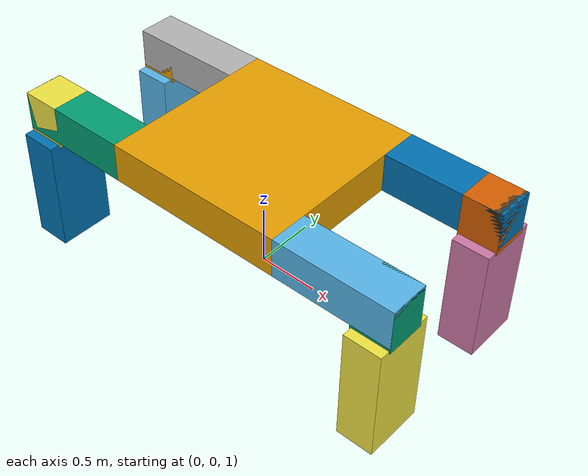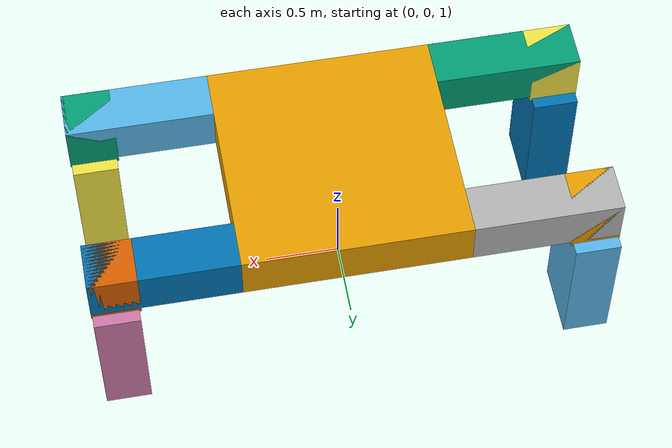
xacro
<?xml version="1.0" ?>
<robot name="robot" xmlns:xacro="http://www.ros.org/wiki/xacro">
    <xacro:include filename="$(find quadped1)/urdf/links_joints.xacro"/>
    <!--first leg -->
    <BOX name="base_link" origin_rpy="0 0 0" origin_xyz="0 0 2" size="1.49077 1.50805 0.32"/>
    <BOX name="link1" origin_rpy="0 0 0" origin_xyz="0.4855 0.16 0" size="0.971 0.32 0.32"/>
    <JOINT_REVOLUTE name="base_link__link1" parent="base_link" child="link1" origin_xyz="0.745385 -0.754025 2" origin_rpy="0 0 0" axis_xyz="0 1 0"/>
    <BOX name="dxel1" origin_rpy="0 0 0" origin_xyz="0.4855 0.16 -0.02" size="0.32 0.32 0.36"/>
    <JOINT_FIXED parent="link1" child="dxel1" axis_xyz="0 1 0" origin_xyz="0.3255 0 0" name="link1__dxel1" origin_rpy="0 0 0"/>
    <BOX name="link2" origin_rpy="0 0 0" origin_xyz="0 0 -0.475" size="0.3 0.48 0.95"/>
    <JOINT_REVOLUTE name="dxel1__link2" parent="dxel1" child="link2" origin_rpy="0 0 0" origin_xyz="0.48855 0.16 -0.18" axis_xyz="0 1 0"/>

   <!-- second leg -->
    <BOX name="link3" origin_rpy="0 0 0" origin_xyz="0.4855 0.16 0" size="0.971 0.32 0.32"/>
    <JOINT_REVOLUTE name="base_link__link3" parent="base_link" child="link3" origin_xyz="0.745385 0.434025 2" origin_rpy="0 0 0" axis_xyz="0 1 0"/>
    <BOX name="dxel2" origin_rpy="0 0 0" origin_xyz="0.4855 0.16 -0.02" size="0.32 0.32 0.36"/>
    <JOINT_FIXED parent="link3" child="dxel2" axis_xyz="0 1 0" origin_xyz="0.3255 0 0" name="link3__dxel2" origin_rpy="0 0 0"/>
    <BOX name="link4" origin_rpy="0 0 0" origin_xyz="0 0 -0.475" size="0.3 0.48 0.95"/>
    <JOINT_REVOLUTE name="dxel2__link4" parent="dxel2" child="link4" origin_rpy="0 0 0" origin_xyz="0.48855 0.16 -0.18" axis_xyz="0 1 0"/>

  <!-- third leg -->
    <BOX name="link5" origin_rpy="0 0 0" origin_xyz="-0.4855 0.16 0" size="0.971 0.32 0.32"/>
    <JOINT_REVOLUTE name="base_link__link5" parent="base_link" child="link5" origin_xyz="-0.745385 0.434025 2" origin_rpy="0 0 0" axis_xyz="0 1 0"/>
    <BOX name="dxel3" origin_rpy="0 0 0" origin_xyz="-0.4855 0.16 -0.02" size="0.32 0.32 0.36"/>
    <JOINT_FIXED parent="link5" child="dxel3" axis_xyz="0 1 0" origin_xyz="-0.3255 0 0" name="link5__dxel3" origin_rpy="0 0 0"/>
    <BOX name="link6" origin_rpy="0 0 0" origin_xyz="0 0 -0.475" size="0.3 0.48 0.95"/>
    <JOINT_REVOLUTE name="dxel3__link6" parent="dxel3" child="link6" origin_rpy="0 0 0" origin_xyz="-0.48855 0.16 -0.18" axis_xyz="0 1 0"/>

  <!-- fourth leg -->
    <BOX name="link7" origin_rpy="0 0 0" origin_xyz="-0.4855 0.16 0" size="0.971 0.32 0.32"/>
    <JOINT_REVOLUTE name="base_link__link7" parent="base_link" child="link7" origin_xyz="-0.745385 -0.754025 2" origin_rpy="0 0 0" axis_xyz="0 1 0"/>
    <BOX name="dxel4" origin_rpy="0 0 0" origin_xyz="-0.4855 0.16 -0.02" size="0.32 0.32 0.36"/>
    <JOINT_FIXED parent="link7" child="dxel4" axis_xyz="0 1 0" origin_xyz="-0.3255 0 0" name="link7__dxel4" origin_rpy="0 0 0"/>
    <BOX name="link8" origin_rpy="0 0 0" origin_xyz="0 0 -0.475" size="0.3 0.48 0.95"/>
    <JOINT_REVOLUTE name="dxel4__link8" parent="dxel4" child="link8" origin_rpy="0 0 0" origin_xyz="-0.48855 0.16 -0.18" axis_xyz="0 1 0"/>

    <gazebo>
    <plugin name="gazebo_ros_control" filename="libgazebo_ros_control.so">
    </plugin>
  </gazebo>

</robot>

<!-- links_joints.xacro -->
<robot xmlns:xacro="http://www.ros.org/wiki/xacro">

  <xacro:macro name="JOINT_REVOLUTE" params="name axis_xyz origin_rpy origin_xyz parent child ">
    <joint name="${name}" type="revolute">
      <axis xyz="${axis_xyz}" />
      <origin rpy="${origin_rpy}" xyz="${origin_xyz}" />
      <limit effort="1000.0" lower="-3.14" upper="3.14" velocity="0.5"/>
      <parent link="${parent}" />
      <child link="${child}" />
    </joint>
    <transmission name="trans_${name}">
      <type>transmission_interface/SimpleTransmission</type>
      <joint name="${name}">
        <hardwareInterface >hardware_interface/EffortJointInterface</hardwareInterface>
      </joint>
      <actuator name="motor_${name}">
        <hardwareInterface>hardware_interface/EffortJointInterface</hardwareInterface>
        <mechanicalReduction>1</mechanicalReduction>
      </actuator>
    </transmission>
  </xacro:macro>
  <xacro:macro name="JOINT_FIXED" params="name axis_xyz origin_rpy origin_xyz parent child ">
    <joint name="${name}" type="fixed">
      <axis xyz="${axis_xyz}" />
      <origin rpy="${origin_rpy}" xyz="${origin_xyz}" />
      <parent link="${parent}" />
      <child link="${child}" />
    </joint>
  </xacro:macro>

  <xacro:macro name="CYLINDER" params="name origin_xyz origin_rpy radius length">
    <link name="${name}">
      <collision>
        <origin rpy="${origin_rpy}" xyz="${origin_xyz}" />
        <geometry>
          <cylinder radius="${radius}" length="${length}" />
        </geometry>
      </collision>
      <visual>
        <origin rpy="${origin_rpy}" xyz="${origin_xyz}" />
        <geometry>
          <cylinder radius="${radius}" length="${length}" />
        </geometry>
      </visual>
    </link>
  </xacro:macro>

  <xacro:macro name="BOX" params="name origin_xyz origin_rpy size">
    <link name="${name}">
       <inertial>
        <mass value="10" />
        <origin rpy="${origin_rpy}" xyz="${origin_xyz}" />
        <inertia ixx="1" ixy="1" ixz="1" iyy="1" iyz="1" izz="1" />
      </inertial>
      <collision>
        <origin rpy="${origin_rpy}" xyz="${origin_xyz}" />
        <geometry>
          <box size="${size}" />
        </geometry>
      </collision>
      <visual>
        <origin rpy="${origin_rpy}" xyz="${origin_xyz}" />
        <geometry>
          <box size="${size}" />
        </geometry>
      </visual>
    </link>
  </xacro:macro>

  <xacro:macro name="MESH" params="name origin_xyz origin_rpy meshfile meshscale mass ixx ixy ixz iyy iyz izz">
    <link name="${name}">
      <inertial>
        <mass value="${mass}" />
        <origin rpy="${origin_rpy}" xyz="${origin_xyz}" />
        <inertia ixx="${ixx}" ixy="${ixy}" ixz="${ixz}" iyy="${iyy}" iyz="${iyz}" izz="${izz}" />
      </inertial>
      <collision>
        <origin rpy="${origin_rpy}" xyz="${origin_xyz}" />
        <geometry>
          <mesh filename="${meshfile}" scale="${meshscale}"/>
        </geometry>
      </collision>
      <visual>
        <origin rpy="${origin_rpy}" xyz="${origin_xyz}" />
        <geometry>
          <mesh filename="${meshfile}" scale="${meshscale}"/>
        </geometry>
        <material name="light_black"/>
      </visual>
    </link>
  </xacro:macro>

</robot>
